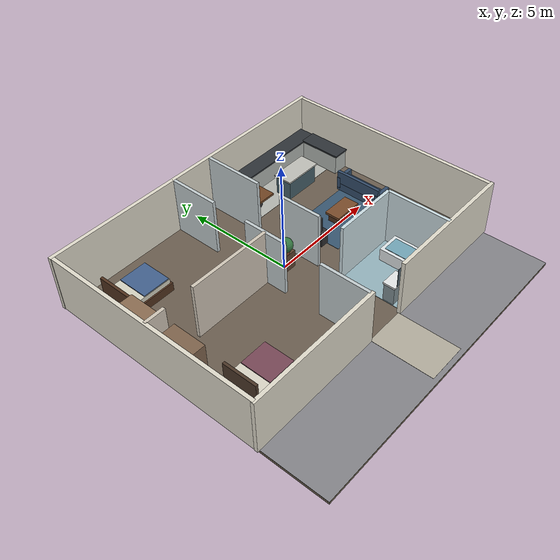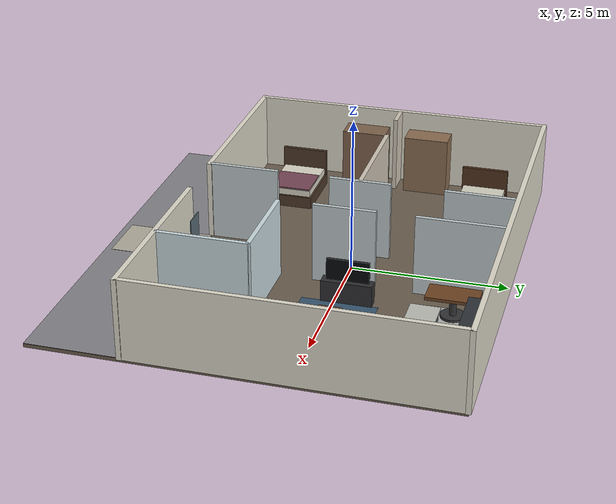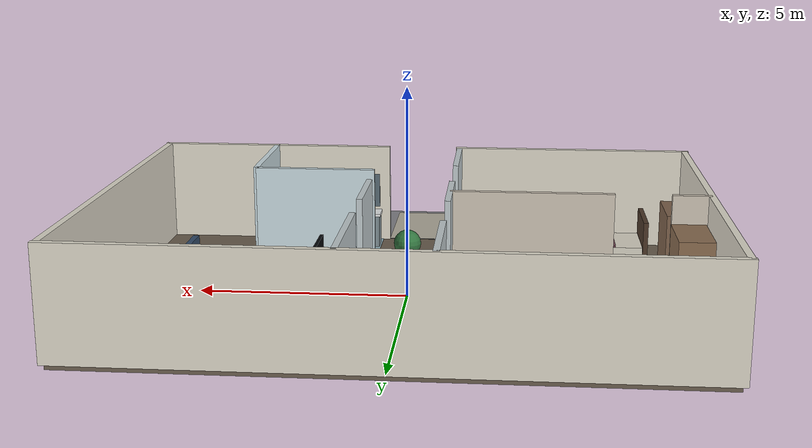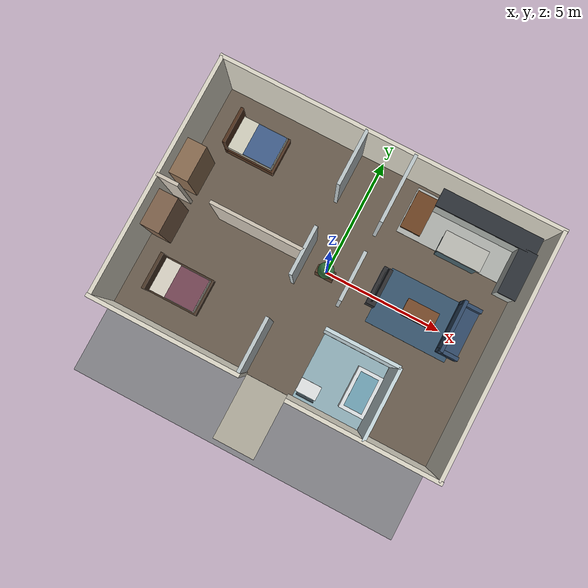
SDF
<?xml version="1.0"?>
<sdf version="1.9">
  <world name="modern_house">
    <!-- Same system set as robot_only.sdf: Sensors is not in Gazebo's
         implicit defaults, so without it the robot camera never publishes. -->
    <plugin filename="ignition-gazebo-physics-system"
            name="gz::sim::systems::Physics">
    </plugin>
    <plugin filename="ignition-gazebo-user-commands-system"
            name="gz::sim::systems::UserCommands">
    </plugin>
    <plugin filename="ignition-gazebo-scene-broadcaster-system"
            name="gz::sim::systems::SceneBroadcaster">
    </plugin>
    <plugin filename="ignition-gazebo-sensors-system"
            name="gz::sim::systems::Sensors">
    </plugin>
    <plugin filename="ignition-gazebo-contact-system"
            name="gz::sim::systems::Contact">
    </plugin>

    <physics name="default_physics" type="ignored">
      <max_step_size>0.001</max_step_size>
      <real_time_factor>1.0</real_time_factor>
    </physics>

    <gravity>0 0 -9.81</gravity>
    <scene>
      <ambient>0.32 0.34 0.38 1</ambient>
      <background>0.62 0.70 0.80 1</background>
      <shadows>true</shadows>
    </scene>

    <light name="sun" type="directional">
      <pose>0 0 12 0 0 0</pose>
      <cast_shadows>true</cast_shadows>
      <diffuse>0.75 0.78 0.84 1</diffuse>
      <specular>0.2 0.2 0.2 1</specular>
      <direction>-0.4 0.2 -0.9</direction>
    </light>

    <light name="living_room_light" type="point">
      <pose>4 0.8 2.25 0 0 0</pose>
      <diffuse>1.0 0.82 0.62 1</diffuse>
      <specular>0.15 0.15 0.15 1</specular>
      <attenuation>
        <range>9</range>
        <constant>0.7</constant>
        <linear>0.08</linear>
        <quadratic>0.02</quadratic>
      </attenuation>
      <cast_shadows>true</cast_shadows>
    </light>

    <light name="kitchen_light" type="point">
      <pose>4.8 3.8 2.25 0 0 0</pose>
      <diffuse>0.92 0.94 1.0 1</diffuse>
      <specular>0.12 0.12 0.12 1</specular>
      <attenuation>
        <range>8</range>
        <constant>0.75</constant>
        <linear>0.08</linear>
        <quadratic>0.02</quadratic>
      </attenuation>
    </light>

    <light name="north_bedroom_light" type="point">
      <pose>-4.2 2.6 2.25 0 0 0</pose>
      <diffuse>1.0 0.86 0.70 1</diffuse>
      <attenuation>
        <range>7</range>
        <constant>0.8</constant>
        <linear>0.08</linear>
        <quadratic>0.02</quadratic>
      </attenuation>
    </light>

    <light name="south_bedroom_light" type="point">
      <pose>-4.2 -2.6 2.25 0 0 0</pose>
      <diffuse>1.0 0.86 0.70 1</diffuse>
      <attenuation>
        <range>7</range>
        <constant>0.8</constant>
        <linear>0.08</linear>
        <quadratic>0.02</quadratic>
      </attenuation>
    </light>

    <!-- The architectural shell uses static primitive geometry. It has no
         inertial blocks because it never participates as a dynamic body. -->
    <frame name="robot_spawn">
      <pose>0 -6.2 0.1 0 0 1.5708</pose>
    </frame>

    <model name="house_shell">
      <static>true</static>

      <link name="floor">
        <pose>0 -1.5 -0.06 0 0 0</pose>
        <collision name="collision">
          <geometry><box><size>14 13 0.12</size></box></geometry>
        </collision>
        <visual name="visual">
          <geometry><box><size>14 13 0.12</size></box></geometry>
          <material>
            <ambient>0.34 0.31 0.27 1</ambient>
            <diffuse>0.42 0.37 0.31 1</diffuse>
            <specular>0.08 0.08 0.08 1</specular>
          </material>
        </visual>
      </link>

      <!-- Exterior: the south wall leaves a two-metre entry opening. -->
      <link name="wall_north">
        <pose>0 5 1.3 0 0 0</pose>
        <collision name="collision"><geometry><box><size>14.2 0.16 2.6</size></box></geometry></collision>
        <visual name="visual">
          <geometry><box><size>14.2 0.16 2.6</size></box></geometry>
          <material><ambient>0.78 0.77 0.73 1</ambient><diffuse>0.88 0.86 0.80 1</diffuse></material>
        </visual>
      </link>
      <link name="wall_south_west">
        <pose>-4 -5 1.3 0 0 0</pose>
        <collision name="collision"><geometry><box><size>6.2 0.16 2.6</size></box></geometry></collision>
        <visual name="visual">
          <geometry><box><size>6.2 0.16 2.6</size></box></geometry>
          <material><ambient>0.78 0.77 0.73 1</ambient><diffuse>0.88 0.86 0.80 1</diffuse></material>
        </visual>
      </link>
      <link name="wall_south_east">
        <pose>4 -5 1.3 0 0 0</pose>
        <collision name="collision"><geometry><box><size>6.2 0.16 2.6</size></box></geometry></collision>
        <visual name="visual">
          <geometry><box><size>6.2 0.16 2.6</size></box></geometry>
          <material><ambient>0.78 0.77 0.73 1</ambient><diffuse>0.88 0.86 0.80 1</diffuse></material>
        </visual>
      </link>
      <link name="wall_east">
        <pose>7 0 1.3 0 0 0</pose>
        <collision name="collision"><geometry><box><size>0.16 10 2.6</size></box></geometry></collision>
        <visual name="visual">
          <geometry><box><size>0.16 10 2.6</size></box></geometry>
          <material><ambient>0.78 0.77 0.73 1</ambient><diffuse>0.88 0.86 0.80 1</diffuse></material>
        </visual>
      </link>
      <link name="wall_west">
        <pose>-7 0 1.3 0 0 0</pose>
        <collision name="collision"><geometry><box><size>0.16 10 2.6</size></box></geometry></collision>
        <visual name="visual">
          <geometry><box><size>0.16 10 2.6</size></box></geometry>
          <material><ambient>0.78 0.77 0.73 1</ambient><diffuse>0.88 0.86 0.80 1</diffuse></material>
        </visual>
      </link>

      <!-- West bedroom wing / central hall, with two door openings. -->
      <link name="hall_west_south">
        <pose>-1 -3.85 1.3 0 0 0</pose>
        <collision name="collision"><geometry><box><size>0.14 2.3 2.6</size></box></geometry></collision>
        <visual name="visual">
          <geometry><box><size>0.14 2.3 2.6</size></box></geometry>
          <material><ambient>0.68 0.72 0.74 1</ambient><diffuse>0.76 0.80 0.81 1</diffuse></material>
        </visual>
      </link>
      <link name="hall_west_center">
        <pose>-1 0 1.3 0 0 0</pose>
        <collision name="collision"><geometry><box><size>0.14 2.0 2.6</size></box></geometry></collision>
        <visual name="visual">
          <geometry><box><size>0.14 2.0 2.6</size></box></geometry>
          <material><ambient>0.68 0.72 0.74 1</ambient><diffuse>0.76 0.80 0.81 1</diffuse></material>
        </visual>
      </link>
      <link name="hall_west_north">
        <pose>-1 3.85 1.3 0 0 0</pose>
        <collision name="collision"><geometry><box><size>0.14 2.3 2.6</size></box></geometry></collision>
        <visual name="visual">
          <geometry><box><size>0.14 2.3 2.6</size></box></geometry>
          <material><ambient>0.68 0.72 0.74 1</ambient><diffuse>0.76 0.80 0.81 1</diffuse></material>
        </visual>
      </link>

      <!-- Bedroom divider with a doorway near the west wall. -->
      <link name="bedroom_divider_east">
        <pose>-2.9 0 1.3 0 0 0</pose>
        <collision name="collision"><geometry><box><size>3.8 0.14 2.6</size></box></geometry></collision>
        <visual name="visual">
          <geometry><box><size>3.8 0.14 2.6</size></box></geometry>
          <material><ambient>0.72 0.69 0.65 1</ambient><diffuse>0.82 0.78 0.72 1</diffuse></material>
        </visual>
      </link>
      <link name="bedroom_divider_west">
        <pose>-6.55 0 1.3 0 0 0</pose>
        <collision name="collision"><geometry><box><size>0.9 0.14 2.6</size></box></geometry></collision>
        <visual name="visual">
          <geometry><box><size>0.9 0.14 2.6</size></box></geometry>
          <material><ambient>0.72 0.69 0.65 1</ambient><diffuse>0.82 0.78 0.72 1</diffuse></material>
        </visual>
      </link>

      <!-- Hall / east living area, open at the entry and living-room door. -->
      <link name="hall_east_north">
        <pose>1 3.6 1.3 0 0 0</pose>
        <collision name="collision"><geometry><box><size>0.14 2.8 2.6</size></box></geometry></collision>
        <visual name="visual">
          <geometry><box><size>0.14 2.8 2.6</size></box></geometry>
          <material><ambient>0.68 0.72 0.74 1</ambient><diffuse>0.76 0.80 0.81 1</diffuse></material>
        </visual>
      </link>
      <link name="hall_east_center">
        <pose>1 0 1.3 0 0 0</pose>
        <collision name="collision"><geometry><box><size>0.14 2.0 2.6</size></box></geometry></collision>
        <visual name="visual">
          <geometry><box><size>0.14 2.0 2.6</size></box></geometry>
          <material><ambient>0.68 0.72 0.74 1</ambient><diffuse>0.76 0.80 0.81 1</diffuse></material>
        </visual>
      </link>

      <!-- Bathroom in the southeast corner, with a west-facing doorway. -->
      <link name="bathroom_north">
        <pose>2.5 -2.1 1.3 0 0 0</pose>
        <collision name="collision"><geometry><box><size>3.0 0.14 2.6</size></box></geometry></collision>
        <visual name="visual">
          <geometry><box><size>3.0 0.14 2.6</size></box></geometry>
          <material><ambient>0.70 0.76 0.78 1</ambient><diffuse>0.80 0.87 0.89 1</diffuse></material>
        </visual>
      </link>
      <link name="bathroom_east">
        <pose>4 -3.55 1.3 0 0 0</pose>
        <collision name="collision"><geometry><box><size>0.14 2.9 2.6</size></box></geometry></collision>
        <visual name="visual">
          <geometry><box><size>0.14 2.9 2.6</size></box></geometry>
          <material><ambient>0.70 0.76 0.78 1</ambient><diffuse>0.80 0.87 0.89 1</diffuse></material>
        </visual>
      </link>
    </model>

    <!-- Floor accents make room boundaries legible to people without adding
         collision seams under the robot. -->
    <model name="floor_accents">
      <static>true</static>
      <!-- Reads the exterior portion of the floor slab as paving rather than
           interior flooring. Visual only, so the doorway stays seamless. -->
      <link name="entry_apron">
        <pose>0 -6.5 0.006 0 0 0</pose>
        <visual name="visual">
          <geometry><box><size>14 3 0.012</size></box></geometry>
          <material><ambient>0.40 0.40 0.42 1</ambient><diffuse>0.52 0.52 0.54 1</diffuse></material>
        </visual>
      </link>
      <link name="entry_walk">
        <pose>0 -6.4 0.014 0 0 0</pose>
        <visual name="visual">
          <geometry><box><size>1.8 2.8 0.008</size></box></geometry>
          <material><ambient>0.56 0.54 0.50 1</ambient><diffuse>0.70 0.68 0.62 1</diffuse></material>
        </visual>
      </link>
      <link name="living_rug">
        <pose>4 0.2 0.006 0 0 0</pose>
        <visual name="visual">
          <geometry><box><size>3.5 2.4 0.012</size></box></geometry>
          <material><ambient>0.16 0.24 0.32 1</ambient><diffuse>0.22 0.34 0.44 1</diffuse></material>
        </visual>
      </link>
      <link name="kitchen_floor">
        <pose>4.3 3.8 0.007 0 0 0</pose>
        <visual name="visual">
          <geometry><box><size>5.2 2.0 0.014</size></box></geometry>
          <material><ambient>0.58 0.59 0.58 1</ambient><diffuse>0.70 0.71 0.69 1</diffuse></material>
        </visual>
      </link>
      <link name="bathroom_floor">
        <pose>2.5 -3.55 0.008 0 0 0</pose>
        <visual name="visual">
          <geometry><box><size>2.85 2.75 0.016</size></box></geometry>
          <material><ambient>0.45 0.56 0.60 1</ambient><diffuse>0.58 0.70 0.74 1</diffuse></material>
        </visual>
      </link>
    </model>

    <model name="living_room_sofa">
      <static>true</static>
      <pose>5.6 0.3 0 0 0 1.57079632679</pose>
      <link name="seat">
        <pose>0 0 0.38 0 0 0</pose>
        <collision name="collision"><geometry><box><size>2.2 0.82 0.38</size></box></geometry></collision>
        <visual name="visual">
          <geometry><box><size>2.2 0.82 0.38</size></box></geometry>
          <material><ambient>0.14 0.20 0.28 1</ambient><diffuse>0.20 0.30 0.42 1</diffuse><specular>0.05 0.05 0.05 1</specular></material>
        </visual>
      </link>
      <link name="back">
        <pose>0 0.34 0.78 0 0 0</pose>
        <collision name="collision"><geometry><box><size>2.2 0.14 0.75</size></box></geometry></collision>
        <visual name="visual">
          <geometry><box><size>2.2 0.14 0.75</size></box></geometry>
          <material><ambient>0.14 0.20 0.28 1</ambient><diffuse>0.20 0.30 0.42 1</diffuse></material>
        </visual>
      </link>
      <link name="arm_left">
        <pose>-1.02 0 0.58 0 0 0</pose>
        <collision name="collision"><geometry><box><size>0.16 0.84 0.54</size></box></geometry></collision>
        <visual name="visual"><geometry><box><size>0.16 0.84 0.54</size></box></geometry><material><diffuse>0.20 0.30 0.42 1</diffuse></material></visual>
      </link>
      <link name="arm_right">
        <pose>1.02 0 0.58 0 0 0</pose>
        <collision name="collision"><geometry><box><size>0.16 0.84 0.54</size></box></geometry></collision>
        <visual name="visual"><geometry><box><size>0.16 0.84 0.54</size></box></geometry><material><diffuse>0.20 0.30 0.42 1</diffuse></material></visual>
      </link>
    </model>

    <model name="coffee_table">
      <static>true</static>
      <pose>4.0 0.2 0 0 0 0</pose>
      <link name="table">
        <collision name="top_collision"><pose>0 0 0.43 0 0 0</pose><geometry><box><size>1.35 0.72 0.10</size></box></geometry></collision>
        <visual name="top"><pose>0 0 0.43 0 0 0</pose><geometry><box><size>1.35 0.72 0.10</size></box></geometry><material><diffuse>0.48 0.30 0.17 1</diffuse><specular>0.16 0.16 0.16 1</specular></material></visual>
        <visual name="leg_left"><pose>-0.52 0 0.22 0 0 0</pose><geometry><box><size>0.10 0.55 0.42</size></box></geometry><material><diffuse>0.30 0.18 0.10 1</diffuse></material></visual>
        <visual name="leg_right"><pose>0.52 0 0.22 0 0 0</pose><geometry><box><size>0.10 0.55 0.42</size></box></geometry><material><diffuse>0.30 0.18 0.10 1</diffuse></material></visual>
      </link>
    </model>

    <model name="media_console">
      <static>true</static>
      <pose>2.1 0.4 0 0 0 1.57079632679</pose>
      <link name="console">
        <collision name="collision"><pose>0 0 0.35 0 0 0</pose><geometry><box><size>1.6 0.38 0.7</size></box></geometry></collision>
        <visual name="cabinet"><pose>0 0 0.35 0 0 0</pose><geometry><box><size>1.6 0.38 0.7</size></box></geometry><material><diffuse>0.18 0.18 0.19 1</diffuse></material></visual>
        <visual name="screen"><pose>0 0.03 1.02 0 0 0</pose><geometry><box><size>1.35 0.08 0.75</size></box></geometry><material><diffuse>0.02 0.03 0.04 1</diffuse><specular>0.35 0.35 0.35 1</specular></material></visual>
      </link>
    </model>

    <model name="kitchen_counters">
      <static>true</static>
      <link name="north_counter">
        <pose>4.7 4.55 0.46 0 0 0</pose>
        <collision name="collision"><geometry><box><size>4.2 0.72 0.92</size></box></geometry></collision>
        <visual name="base"><geometry><box><size>4.2 0.72 0.92</size></box></geometry><material><diffuse>0.70 0.72 0.70 1</diffuse></material></visual>
        <visual name="worktop"><pose>0 0 0.49 0 0 0</pose><geometry><box><size>4.3 0.78 0.07</size></box></geometry><material><diffuse>0.18 0.20 0.22 1</diffuse><specular>0.22 0.22 0.22 1</specular></material></visual>
      </link>
      <link name="east_counter">
        <pose>6.55 3.25 0.46 0 0 0</pose>
        <collision name="collision"><geometry><box><size>0.72 1.9 0.92</size></box></geometry></collision>
        <visual name="base"><geometry><box><size>0.72 1.9 0.92</size></box></geometry><material><diffuse>0.70 0.72 0.70 1</diffuse></material></visual>
        <visual name="worktop"><pose>0 0 0.49 0 0 0</pose><geometry><box><size>0.78 2.0 0.07</size></box></geometry><material><diffuse>0.18 0.20 0.22 1</diffuse></material></visual>
      </link>
      <link name="island">
        <pose>4.3 3.05 0.46 0 0 0</pose>
        <collision name="collision"><geometry><box><size>1.7 0.78 0.92</size></box></geometry></collision>
        <visual name="base"><geometry><box><size>1.7 0.78 0.92</size></box></geometry><material><diffuse>0.28 0.38 0.42 1</diffuse></material></visual>
        <visual name="worktop"><pose>0 0 0.49 0 0 0</pose><geometry><box><size>1.85 0.9 0.07</size></box></geometry><material><diffuse>0.75 0.75 0.72 1</diffuse><specular>0.18 0.18 0.18 1</specular></material></visual>
      </link>
    </model>

    <model name="dining_table">
      <static>true</static>
      <pose>2.15 3.65 0 0 0 1.57079632679</pose>
      <link name="table">
        <collision name="collision"><pose>0 0 0.74 0 0 0</pose><geometry><box><size>1.6 0.85 0.10</size></box></geometry></collision>
        <visual name="top"><pose>0 0 0.74 0 0 0</pose><geometry><box><size>1.6 0.85 0.10</size></box></geometry><material><diffuse>0.44 0.27 0.14 1</diffuse></material></visual>
        <visual name="pedestal"><pose>0 0 0.37 0 0 0</pose><geometry><cylinder><radius>0.11</radius><length>0.7</length></cylinder></geometry><material><diffuse>0.20 0.20 0.21 1</diffuse></material></visual>
        <visual name="base"><pose>0 0 0.05 0 0 0</pose><geometry><cylinder><radius>0.38</radius><length>0.08</length></cylinder></geometry><material><diffuse>0.20 0.20 0.21 1</diffuse></material></visual>
      </link>
    </model>

    <model name="north_bed">
      <static>true</static>
      <pose>-4.8 3.25 0 0 0 0</pose>
      <link name="bed">
        <collision name="collision"><pose>0 0 0.34 0 0 0</pose><geometry><box><size>2.05 1.45 0.68</size></box></geometry></collision>
        <visual name="frame"><pose>0 0 0.20 0 0 0</pose><geometry><box><size>2.15 1.55 0.40</size></box></geometry><material><diffuse>0.32 0.20 0.12 1</diffuse></material></visual>
        <visual name="mattress"><pose>0 0 0.50 0 0 0</pose><geometry><box><size>2.0 1.42 0.24</size></box></geometry><material><diffuse>0.84 0.83 0.76 1</diffuse></material></visual>
        <visual name="blanket"><pose>0.35 0 0.635 0 0 0</pose><geometry><box><size>1.25 1.38 0.05</size></box></geometry><material><diffuse>0.26 0.38 0.56 1</diffuse></material></visual>
        <visual name="headboard"><pose>-1.0 0 0.76 0 0 0</pose><geometry><box><size>0.12 1.55 1.05</size></box></geometry><material><diffuse>0.32 0.20 0.12 1</diffuse></material></visual>
      </link>
    </model>

    <model name="south_bed">
      <static>true</static>
      <pose>-4.8 -3.15 0 0 0 0</pose>
      <link name="bed">
        <collision name="collision"><pose>0 0 0.34 0 0 0</pose><geometry><box><size>2.05 1.45 0.68</size></box></geometry></collision>
        <visual name="frame"><pose>0 0 0.20 0 0 0</pose><geometry><box><size>2.15 1.55 0.40</size></box></geometry><material><diffuse>0.30 0.22 0.16 1</diffuse></material></visual>
        <visual name="mattress"><pose>0 0 0.50 0 0 0</pose><geometry><box><size>2.0 1.42 0.24</size></box></geometry><material><diffuse>0.86 0.84 0.78 1</diffuse></material></visual>
        <visual name="blanket"><pose>0.35 0 0.635 0 0 0</pose><geometry><box><size>1.25 1.38 0.05</size></box></geometry><material><diffuse>0.47 0.28 0.34 1</diffuse></material></visual>
        <visual name="headboard"><pose>-1.0 0 0.76 0 0 0</pose><geometry><box><size>0.12 1.55 1.05</size></box></geometry><material><diffuse>0.30 0.22 0.16 1</diffuse></material></visual>
      </link>
    </model>

    <model name="bedroom_storage">
      <static>true</static>
      <link name="north_wardrobe">
        <pose>-6.45 1.1 1.0 0 0 0</pose>
        <collision name="collision"><geometry><box><size>0.8 1.5 2.0</size></box></geometry></collision>
        <visual name="visual"><geometry><box><size>0.8 1.5 2.0</size></box></geometry><material><diffuse>0.55 0.43 0.32 1</diffuse></material></visual>
      </link>
      <link name="south_wardrobe">
        <pose>-6.45 -1.1 1.0 0 0 0</pose>
        <collision name="collision"><geometry><box><size>0.8 1.5 2.0</size></box></geometry></collision>
        <visual name="visual"><geometry><box><size>0.8 1.5 2.0</size></box></geometry><material><diffuse>0.50 0.39 0.30 1</diffuse></material></visual>
      </link>
    </model>

    <model name="bathroom_fixtures">
      <static>true</static>
      <link name="tub">
        <pose>3.35 -3.55 0.30 0 0 0</pose>
        <collision name="collision"><geometry><box><size>1.05 1.75 0.60</size></box></geometry></collision>
        <visual name="outer"><geometry><box><size>1.05 1.75 0.60</size></box></geometry><material><diffuse>0.88 0.90 0.91 1</diffuse><specular>0.20 0.20 0.20 1</specular></material></visual>
        <visual name="basin"><pose>0 0 0.16 0 0 0</pose><geometry><box><size>0.76 1.45 0.32</size></box></geometry><material><diffuse>0.45 0.65 0.72 1</diffuse></material></visual>
      </link>
      <link name="vanity">
        <pose>1.5 -4.35 0.43 0 0 0</pose>
        <collision name="collision"><geometry><box><size>0.78 0.50 0.86</size></box></geometry></collision>
        <visual name="cabinet"><geometry><box><size>0.78 0.50 0.86</size></box></geometry><material><diffuse>0.50 0.56 0.58 1</diffuse></material></visual>
        <visual name="sink"><pose>0 0 0.46 0 0 0</pose><geometry><box><size>0.84 0.56 0.08</size></box></geometry><material><diffuse>0.90 0.91 0.91 1</diffuse></material></visual>
      </link>
      <link name="mirror">
        <pose>1.5 -4.67 1.45 1.57079632679 0 0</pose>
        <visual name="visual"><geometry><box><size>0.70 0.90 0.025</size></box></geometry><material><diffuse>0.35 0.42 0.46 1</diffuse><specular>0.75 0.75 0.75 1</specular></material></visual>
      </link>
    </model>

    <model name="hall_console">
      <static>true</static>
      <pose>0 -0.1 0 0 0 0</pose>
      <link name="console">
        <collision name="collision"><pose>0 0 0.42 0 0 0</pose><geometry><box><size>0.75 0.34 0.84</size></box></geometry></collision>
        <visual name="visual"><pose>0 0 0.42 0 0 0</pose><geometry><box><size>0.75 0.34 0.84</size></box></geometry><material><diffuse>0.37 0.26 0.18 1</diffuse></material></visual>
        <visual name="plant_pot"><pose>0 0 0.96 0 0 0</pose><geometry><cylinder><radius>0.16</radius><length>0.26</length></cylinder></geometry><material><diffuse>0.52 0.30 0.18 1</diffuse></material></visual>
        <visual name="plant"><pose>0 0 1.28 0 0 0</pose><geometry><sphere><radius>0.32</radius></sphere></geometry><material><diffuse>0.20 0.46 0.25 1</diffuse></material></visual>
      </link>
    </model>
  </world>
</sdf>
